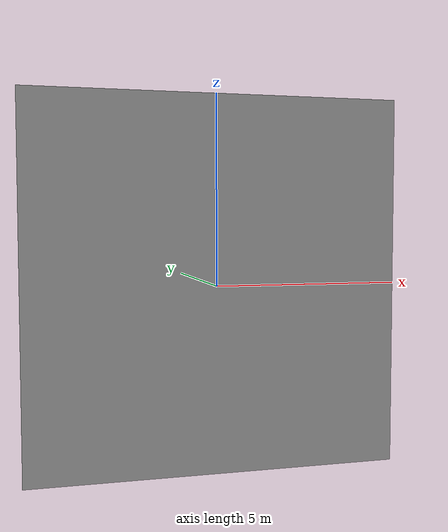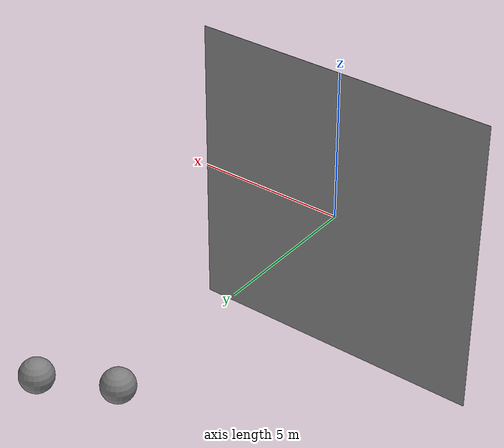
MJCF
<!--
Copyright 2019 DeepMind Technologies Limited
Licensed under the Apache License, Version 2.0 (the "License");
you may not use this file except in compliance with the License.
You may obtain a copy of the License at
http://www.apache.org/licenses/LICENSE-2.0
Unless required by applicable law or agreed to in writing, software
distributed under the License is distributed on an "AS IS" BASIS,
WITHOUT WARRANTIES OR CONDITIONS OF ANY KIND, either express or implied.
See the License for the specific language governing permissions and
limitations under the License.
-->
<mujoco>
  <option gravity="0 -9.81 0" />
  <worldbody>
    <geom name="ground" type="plane" size="5 5 1" euler="-90 0 0"/>
    <body name="parent" pos="0 10 0">
      <geom name="parent_shape" type="sphere" size="0.5"/>
      <joint type="free" />
      <body name="child" pos="2 1 0">
        <geom name="child_shape" type="sphere" size="0.5"/>
        <joint type="hinge" axis="1 0 0"/>
      </body>
    </body>
  </worldbody>
</mujoco>
